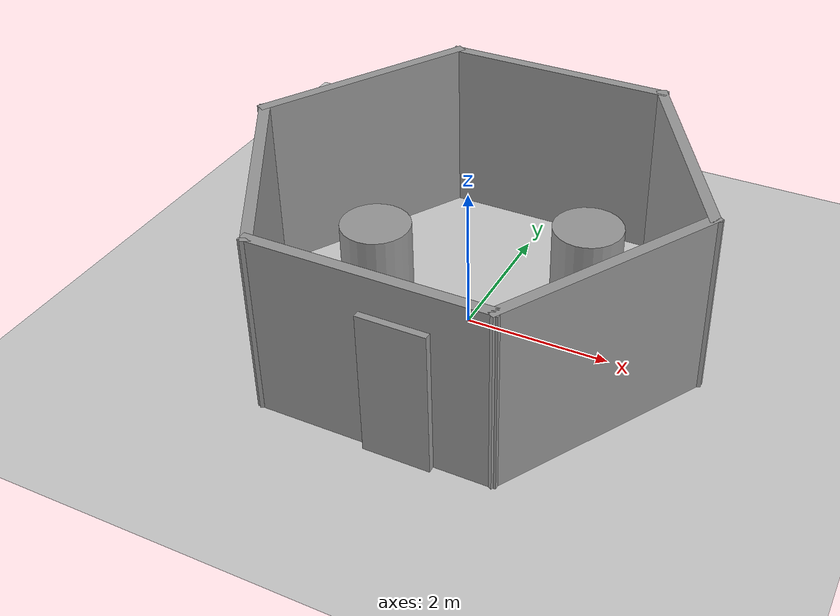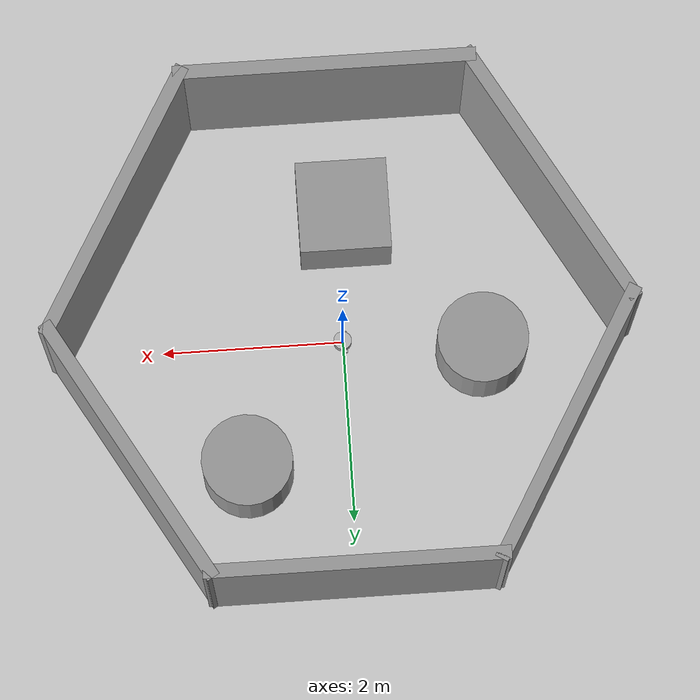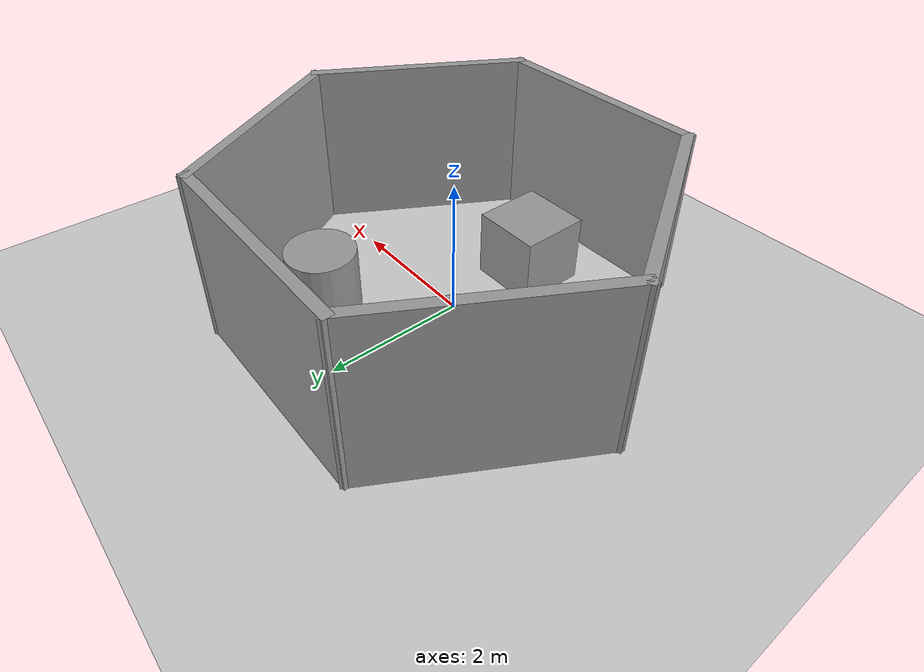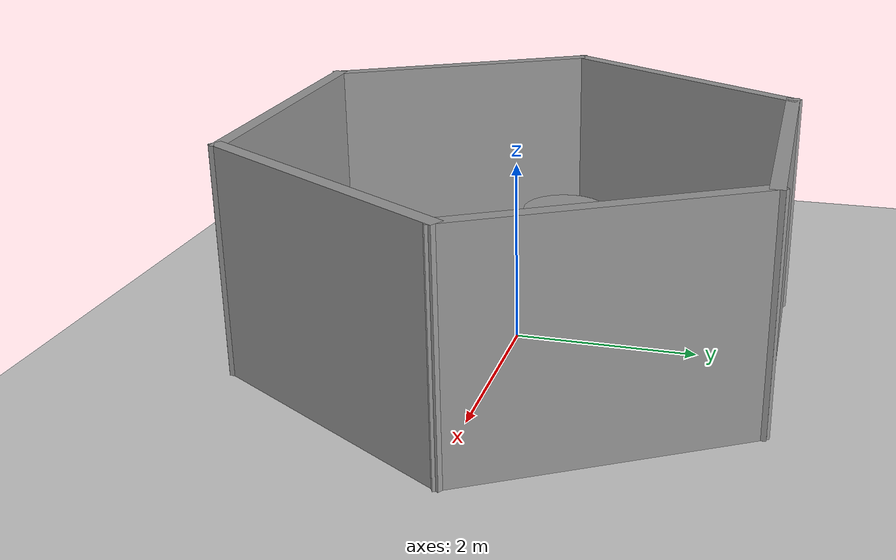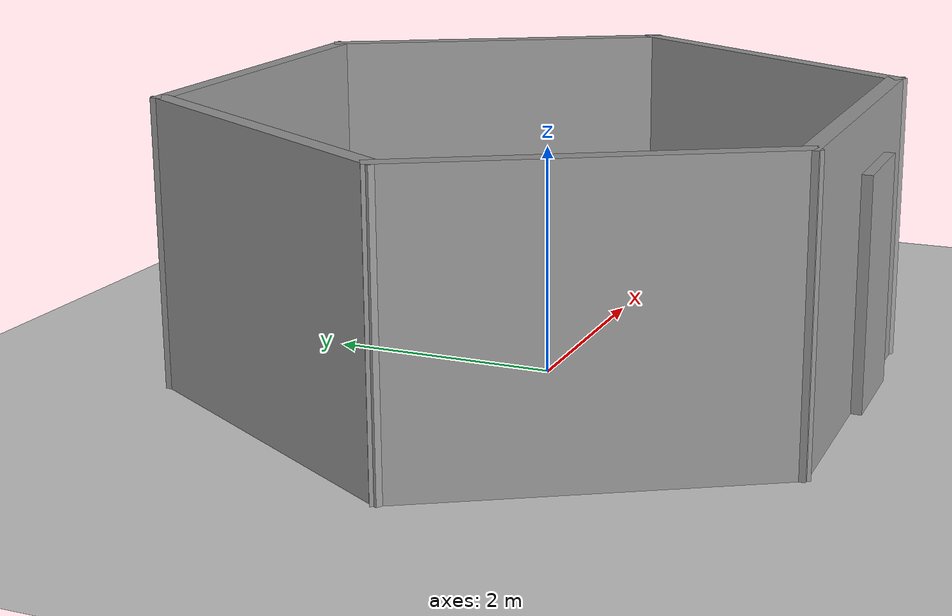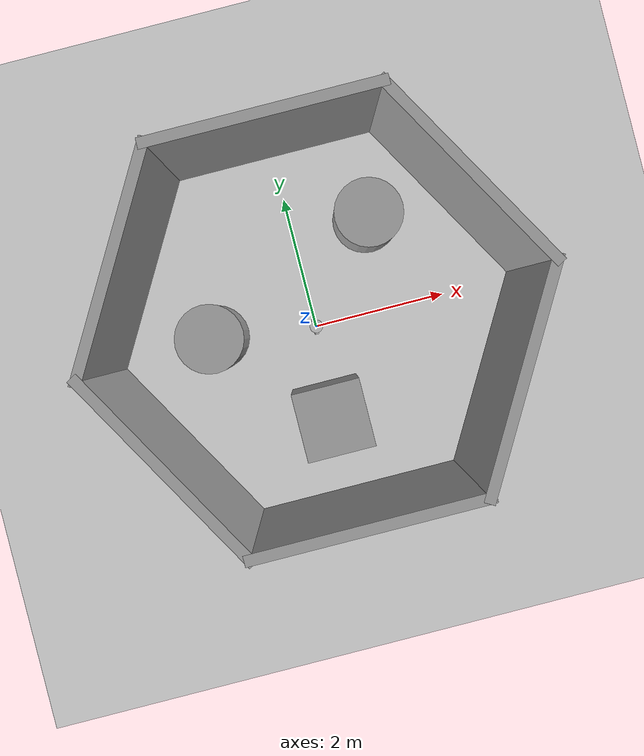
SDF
<sdf version="1.7">
 <world name="default">
  <light name="sun" type="directional">
   <pose>0 0 10 0 -0 0</pose>
   <diffuse>0.8 0.8 0.8 1</diffuse>
   <specular>0.2 0.2 0.2 1</specular>
   <attenuation>
    <range>1000</range>
    <constant>0.9</constant>
    <linear>0.01</linear>
    <quadratic>0.001</quadratic>
   </attenuation>
   <direction>-0.5 0.1 -0.9</direction>
   <spot><inner_angle>0</inner_angle><outer_angle>0</outer_angle><falloff>0</falloff></spot>
  </light>
  <model name="ground_plane">
   <static>1</static>
   <link name="link">
    <collision name="collision">
     <geometry><plane><normal>0 0 1</normal><size>100 100</size></plane></geometry>
     <surface><friction><ode><mu>100</mu><mu2>50</mu2></ode></friction></surface>
    </collision>
    <visual name="visual">
     <cast_shadows>0</cast_shadows>
     <geometry><plane><normal>0 0 1</normal><size>100 100</size></plane></geometry>
     <material>
      <script><uri>file://media/materials/scripts/gazebo.material</uri><name>Gazebo/Grey</name></script>
     </material>
    </visual>
   </link>
  </model>
  <gravity>0 0 -9.8</gravity>
  <magnetic_field>6e-06 2.3e-05 -4.2e-05</magnetic_field>
  <atmosphere type="adiabatic"/>
  <physics type="ode">
   <max_step_size>0.001</max_step_size>
   <real_time_factor>1</real_time_factor>
   <real_time_update_rate>1000</real_time_update_rate>
  </physics>
  <scene><ambient>0.4 0.4 0.4 1</ambient><background>0.7 0.7 0.7 1</background><shadows>1</shadows></scene>
  <audio><device>default</device></audio>
  <spherical_coordinates>
   <surface_model>EARTH_WGS84</surface_model>
   <latitude_deg>0</latitude_deg>
   <longitude_deg>0</longitude_deg>
   <elevation>0</elevation>
   <heading_deg>0</heading_deg>
  </spherical_coordinates>
  <model name="mbot.world">
   <pose>0.02999 0.08697 0 0 -0 0</pose>
   <link name="Wall_21">
    <collision name="Wall_21_Collision">
     <geometry><box><size>3.25 0.15 2.5</size></box></geometry>
     <pose>0 0 1.25 0 -0 0</pose>
    </collision>
    <visual name="Wall_21_Visual">
     <pose>0 0 1.25 0 -0 0</pose>
     <geometry><box><size>3.25 0.15 2.5</size></box></geometry>
     <material>
      <script><uri>file://media/materials/scripts/gazebo.material</uri><name>Gazebo/Grey</name></script>
      <ambient>1 1 1 1</ambient>
     </material>
     <meta><layer>0</layer></meta>
    </visual>
    <pose>0 2.68468 0 0 -0 0</pose>
   </link>
   <link name="Wall_22">
    <collision name="Wall_22_Collision">
     <geometry><box><size>3.25 0.15 2.5</size></box></geometry>
     <pose>0 0 1.25 0 -0 0</pose>
    </collision>
    <visual name="Wall_22_Visual">
     <pose>0 0 1.25 0 -0 0</pose>
     <geometry><box><size>3.25 0.15 2.5</size></box></geometry>
     <material>
      <script><uri>file://media/materials/scripts/gazebo.material</uri><name>Gazebo/Grey</name></script>
      <ambient>1 1 1 1</ambient>
     </material>
     <meta><layer>0</layer></meta>
    </visual>
    <pose>2.325 1.34234 0 0 -0 -1.0472</pose>
   </link>
   <link name="Wall_23">
    <collision name="Wall_23_Collision">
     <geometry><box><size>3.25 0.15 2.5</size></box></geometry>
     <pose>0 0 1.25 0 -0 0</pose>
    </collision>
    <visual name="Wall_23_Visual">
     <pose>0 0 1.25 0 -0 0</pose>
     <geometry><box><size>3.25 0.15 2.5</size></box></geometry>
     <material>
      <script><uri>file://media/materials/scripts/gazebo.material</uri><name>Gazebo/Grey</name></script>
      <ambient>1 1 1 1</ambient>
     </material>
     <meta><layer>0</layer></meta>
    </visual>
    <pose>2.325 -1.34234 0 0 -0 -2.0944</pose>
   </link>
   <link name="Wall_24">
    <collision name="Wall_24_Collision">
     <geometry><box><size>3.25 0.15 2.5</size></box></geometry>
     <pose>0 0 1.25 0 -0 0</pose>
    </collision>
    <visual name="Wall_24_Visual">
     <pose>0 0 1.25 0 -0 0</pose>
     <geometry><box><size>3.25 0.15 2.5</size></box></geometry>
     <material>
      <script><uri>file://media/materials/scripts/gazebo.material</uri><name>Gazebo/Grey</name></script>
      <ambient>1 1 1 1</ambient>
     </material>
     <meta><layer>0</layer></meta>
    </visual>
    <pose>0 -2.68468 0 0 -0 3.14159</pose>
   </link>
   <link name="Wall_25">
    <collision name="Wall_25_Collision">
     <geometry><box><size>3.25 0.15 2.5</size></box></geometry>
     <pose>0 0 1.25 0 -0 0</pose>
    </collision>
    <visual name="Wall_25_Visual">
     <pose>0 0 1.25 0 -0 0</pose>
     <geometry><box><size>3.25 0.15 2.5</size></box></geometry>
     <material>
      <script><uri>file://media/materials/scripts/gazebo.material</uri><name>Gazebo/Grey</name></script>
      <ambient>1 1 1 1</ambient>
     </material>
     <meta><layer>0</layer></meta>
    </visual>
    <pose>-2.325 -1.34234 0 0 -0 2.0944</pose>
   </link>
   <link name="Wall_26">
    <collision name="Wall_26_Collision">
     <geometry><box><size>3.25 0.15 2.5</size></box></geometry>
     <pose>0 0 1.25 0 -0 0</pose>
    </collision>
    <visual name="Wall_26_Visual">
     <pose>0 0 1.25 0 -0 0</pose>
     <geometry><box><size>3.25 0.15 2.5</size></box></geometry>
     <material>
      <script><uri>file://media/materials/scripts/gazebo.material</uri><name>Gazebo/Grey</name></script>
      <ambient>1 1 1 1</ambient>
     </material>
     <meta><layer>0</layer></meta>
    </visual>
    <pose>-2.325 1.34234 0 0 -0 1.0472</pose>
   </link>
   <static>1</static>
  </model>
  <model name="unit_box">
   <pose>-0.093181 -1.35413 0.5 0 -0 0</pose>
   <link name="link">
    <inertial>
     <mass>1</mass>
     <inertia>
      <ixx>0.166667</ixx>
      <ixy>0</ixy>
      <ixz>0</ixz>
      <iyy>0.166667</iyy>
      <iyz>0</iyz>
      <izz>0.166667</izz>
     </inertia>
    </inertial>
    <collision name="collision"><geometry><box><size>1 1 1</size></box></geometry></collision>
    <visual name="visual">
     <geometry><box><size>1 1 1</size></box></geometry>
     <material>
      <script><name>Gazebo/Grey</name><uri>file://media/materials/scripts/gazebo.material</uri></script>
     </material>
    </visual>
   </link>
  </model>
  <model name="unit_cylinder">
   <pose>1.1315 1.39437 0.499992 -3e-06 3e-06 0</pose>
   <link name="link">
    <inertial>
     <mass>1</mass>
     <inertia><ixx>0.145833</ixx><ixy>0</ixy><ixz>0</ixz><iyy>0.145833</iyy><iyz>0</iyz><izz>0.125</izz></inertia>
    </inertial>
    <collision name="collision">
     <geometry><cylinder><radius>0.5</radius><length>1</length></cylinder></geometry>
    </collision>
    <visual name="visual">
     <geometry><cylinder><radius>0.5</radius><length>1</length></cylinder></geometry>
     <material>
      <script><name>Gazebo/Grey</name><uri>file://media/materials/scripts/gazebo.material</uri></script>
     </material>
    </visual>
   </link>
  </model>
  <model name="unit_cylinder_0">
   <pose>-1.52002 0.208482 0.499992 -3e-06 3e-06 0</pose>
   <link name="link">
    <inertial>
     <mass>1</mass>
     <inertia><ixx>0.145833</ixx><ixy>0</ixy><ixz>0</ixz><iyy>0.145833</iyy><iyz>0</iyz><izz>0.125</izz></inertia>
    </inertial>
    <collision name="collision">
     <geometry><cylinder><radius>0.5</radius><length>1</length></cylinder></geometry>
    </collision>
    <visual name="visual">
     <geometry><cylinder><radius>0.5</radius><length>1</length></cylinder></geometry>
     <material>
      <script><name>Gazebo/Grey</name><uri>file://media/materials/scripts/gazebo.material</uri></script>
     </material>
    </visual>
   </link>
  </model>
  <model name="mbot.world_0">
   <link name="Door_0">
    <collision name="Door_0_Collision">
     <geometry><box><size>0.9 0.17 2</size></box></geometry>
     <pose>0 0 1 0 -0 0</pose>
    </collision>
    <visual name="Door_0_Visual">
     <pose>0 0 1 0 -0 0</pose>
     <geometry><box><size>0.9 0.17 2</size></box></geometry>
     <material>
      <script><uri>file://media/materials/scripts/gazebo.material</uri><name>Gazebo/Grey</name></script>
     </material>
    </visual>
    <pose>0.4 -2.68 0 0 -0 0</pose>
   </link>
   <static>1</static>
  </model>
  <model name="mbot">
   <link name="base_footprint">
    <inertial>
     <pose>0.002857 0 0.095 0 -0 0</pose>
     <mass>0.42</mass>
     <inertia>
      <ixx>0.0134043</ixx>
      <ixy>0</ixy>
      <ixz>0.000114</ixz>
      <iyy>0.0134728</iyy>
      <iyz>0</iyz>
      <izz>0.0211486</izz>
     </inertia>
    </inertial>
    <collision name="base_footprint_fixed_joint_lump__base_link_collision">
     <pose>0 0 0.076 0 -0 0</pose>
     <geometry><cylinder><length>0.12</length><radius>0.1</radius></cylinder></geometry>
    </collision>
    <collision name="base_footprint_fixed_joint_lump__caster_link_collision_1">
     <pose>0.06 0 0 1.57079 -0 0</pose>
     <geometry><sphere><radius>0.016</radius></sphere></geometry>
     <surface>
      <contact><ode><kp>1e+06</kp><kd>10</kd></ode></contact>
      <friction><ode><mu>0</mu><mu2>0</mu2></ode></friction>
     </surface>
    </collision>
    <collision name="base_footprint_fixed_joint_lump__imu_link_collision_2">
     <pose>0 0 0.096 0 -0 0</pose>
     <geometry><box><size>0.02 0.02 0.02</size></box></geometry>
    </collision>
    <collision name="base_footprint_fixed_joint_lump__laser_link_collision_3">
     <pose>0 0 0.151 0 -0 0</pose>
     <geometry><cylinder><length>0.02</length><radius>0.02</radius></cylinder></geometry>
    </collision>
    <visual name="base_footprint_fixed_joint_lump__base_link_visual">
     <pose>0 0 0.076 0 -0 0</pose>
     <geometry><cylinder><length>0.12</length><radius>0.1</radius></cylinder></geometry>
    </visual>
    <visual name="base_footprint_fixed_joint_lump__caster_link_visual_1">
     <pose>0.06 0 0 1.57079 -0 0</pose>
     <geometry><sphere><radius>0.016</radius></sphere></geometry>
     <material>
      <script><name>Gazebo/Black</name><uri>file://media/materials/scripts/gazebo.material</uri></script>
     </material>
    </visual>
    <visual name="base_footprint_fixed_joint_lump__imu_link_visual_2">
     <pose>0 0 0.096 0 -0 0</pose>
     <geometry><box><size>0.02 0.02 0.02</size></box></geometry>
    </visual>
    <visual name="base_footprint_fixed_joint_lump__laser_link_visual_3">
     <pose>0 0 0.151 0 -0 0</pose>
     <geometry><cylinder><length>0.02</length><radius>0.02</radius></cylinder></geometry>
     <material>
      <script><name>Gazebo/Black</name><uri>file://media/materials/scripts/gazebo.material</uri></script>
     </material>
    </visual>
    <sensor name="imu_sensor" type="imu">
     <plugin name="imu_plugin" filename="libgazebo_ros_imu_sensor.so">
      <ros><namespace>/</namespace><remapping>~/out:=imu</remapping></ros>
      <initial_orientation_as_reference>0</initial_orientation_as_reference>
     </plugin>
     <always_on>1</always_on>
     <update_rate>100</update_rate>
     <visualize>1</visualize>
     <imu>
      <angular_velocity>
       <x>
        <noise type="gaussian">
         <mean>0</mean>
         <stddev>0.0002</stddev>
         <bias_mean>7.5e-06</bias_mean>
         <bias_stddev>8e-07</bias_stddev>
        </noise>
       </x>
       <y>
        <noise type="gaussian">
         <mean>0</mean>
         <stddev>0.0002</stddev>
         <bias_mean>7.5e-06</bias_mean>
         <bias_stddev>8e-07</bias_stddev>
        </noise>
       </y>
       <z>
        <noise type="gaussian">
         <mean>0</mean>
         <stddev>0.0002</stddev>
         <bias_mean>7.5e-06</bias_mean>
         <bias_stddev>8e-07</bias_stddev>
        </noise>
       </z>
      </angular_velocity>
      <linear_acceleration>
       <x>
        <noise type="gaussian">
         <mean>0</mean>
         <stddev>0.017</stddev>
         <bias_mean>0.1</bias_mean>
         <bias_stddev>0.001</bias_stddev>
        </noise>
       </x>
       <y>
        <noise type="gaussian">
         <mean>0</mean>
         <stddev>0.017</stddev>
         <bias_mean>0.1</bias_mean>
         <bias_stddev>0.001</bias_stddev>
        </noise>
       </y>
       <z>
        <noise type="gaussian">
         <mean>0</mean>
         <stddev>0.017</stddev>
         <bias_mean>0.1</bias_mean>
         <bias_stddev>0.001</bias_stddev>
        </noise>
       </z>
      </linear_acceleration>
     </imu>
     <pose>0 0 0.096 0 -0 0</pose>
    </sensor>
    <sensor name="laser_sensor" type="ray">
     <always_on>1</always_on>
     <visualize>1</visualize>
     <update_rate>5</update_rate>
     <ray>
      <scan>
       <horizontal>
        <samples>360</samples>
        <resolution>1</resolution>
        <min_angle>0</min_angle>
        <max_angle>6.28</max_angle>
       </horizontal>
       <vertical><samples>1</samples><min_angle>0</min_angle><max_angle>0</max_angle></vertical>
      </scan>
      <range><min>0.12</min><max>3.5</max><resolution>0.015</resolution></range>
      <noise><type>gaussian</type><mean>0</mean><stddev>0.01</stddev></noise>
     </ray>
     <plugin name="laserscan" filename="libgazebo_ros_ray_sensor.so">
      <ros><remapping>~/out:=scan</remapping></ros>
      <output_type>sensor_msgs/LaserScan</output_type>
      <frame_name>laser_link</frame_name>
     </plugin>
     <pose>0 0 0.151 0 -0 0</pose>
    </sensor>
    <sensor name="ultrasonic_sensor" type="ray">
     <visualize>1</visualize>
     <update_rate>5</update_rate>
     <ray>
      <scan>
       <horizontal>
        <samples>5</samples>
        <resolution>1</resolution>
        <min_angle>-0.12</min_angle>
        <max_angle>0.12</max_angle>
       </horizontal>
       <vertical>
        <samples>5</samples>
        <resolution>1</resolution>
        <min_angle>-0.01</min_angle>
        <max_angle>0.01</max_angle>
       </vertical>
      </scan>
      <range><min>0.02</min><max>4</max><resolution>0.01</resolution></range>
      <noise><type>gaussian</type><mean>0</mean><stddev>0.01</stddev></noise>
     </ray>
     <plugin name="ultrasonic_sensor_controller" filename="libgazebo_ros_ray_sensor.so">
      <ros><remapping>~/out:=ultrasonic_sensor_1</remapping></ros>
      <output_type>sensor_msgs/Range</output_type>
      <radiation_type>ultrasound</radiation_type>
      <frame_name>ultrasonic_sensor_link</frame_name>
     </plugin>
     <pose>0.07 0 0.152 0 -0 0</pose>
    </sensor>
   </link>
   <joint name="left_wheel_joint" type="revolute">
    <pose relative_to="base_footprint">-0.02 0.1 0.016 0 -0 0</pose>
    <parent>base_footprint</parent>
    <child>left_wheel_link</child>
    <axis>
     <xyz>0 1 0</xyz>
     <limit><lower>-1e+16</lower><upper>1e+16</upper></limit>
     <dynamics><spring_reference>0</spring_reference><spring_stiffness>0</spring_stiffness></dynamics>
    </axis>
   </joint>
   <link name="left_wheel_link">
    <pose relative_to="left_wheel_joint">0 0 0 0 -0 0</pose>
    <inertial>
     <mass>0.2</mass>
     <inertia>
      <ixx>0.000190417</ixx>
      <ixy>0</ixy>
      <ixz>0</ixz>
      <iyy>0.0001904</iyy>
      <iyz>0</iyz>
      <izz>0.00036</izz>
     </inertia>
    </inertial>
    <collision name="left_wheel_link_collision">
     <pose>0 0 0 1.57079 -0 0</pose>
     <geometry><cylinder><length>0.04</length><radius>0.032</radius></cylinder></geometry>
    </collision>
    <visual name="left_wheel_link_visual">
     <pose>0 0 0 1.57079 -0 0</pose>
     <geometry><cylinder><length>0.04</length><radius>0.032</radius></cylinder></geometry>
    </visual>
   </link>
   <joint name="right_wheel_joint" type="revolute">
    <pose relative_to="base_footprint">-0.02 -0.1 0.016 0 -0 0</pose>
    <parent>base_footprint</parent>
    <child>right_wheel_link</child>
    <axis>
     <xyz>0 1 0</xyz>
     <limit><lower>-1e+16</lower><upper>1e+16</upper></limit>
     <dynamics><spring_reference>0</spring_reference><spring_stiffness>0</spring_stiffness></dynamics>
    </axis>
   </joint>
   <link name="right_wheel_link">
    <pose relative_to="right_wheel_joint">0 0 0 0 -0 0</pose>
    <inertial>
     <mass>0.2</mass>
     <inertia>
      <ixx>0.000190417</ixx>
      <ixy>0</ixy>
      <ixz>0</ixz>
      <iyy>0.0001904</iyy>
      <iyz>0</iyz>
      <izz>0.00036</izz>
     </inertia>
    </inertial>
    <collision name="right_wheel_link_collision">
     <pose>0 0 0 1.57079 -0 0</pose>
     <geometry><cylinder><length>0.04</length><radius>0.032</radius></cylinder></geometry>
    </collision>
    <visual name="right_wheel_link_visual">
     <pose>0 0 0 1.57079 -0 0</pose>
     <geometry><cylinder><length>0.04</length><radius>0.032</radius></cylinder></geometry>
    </visual>
   </link>
   <static>0</static>
   <plugin name="diff_drive" filename="libgazebo_ros_diff_drive.so">
    <ros><namespace>/</namespace><remapping>cmd_vel:=cmd_vel</remapping><remapping>odom:=odom</remapping></ros>
    <update_rate>30</update_rate>
    <left_joint>left_wheel_joint</left_joint>
    <right_joint>right_wheel_joint</right_joint>
    <wheel_separation>0.2</wheel_separation>
    <wheel_diameter>0.065</wheel_diameter>
    <max_wheel_torque>20</max_wheel_torque>
    <max_wheel_acceleration>1.0</max_wheel_acceleration>
    <publish_odom>1</publish_odom>
    <publish_odom_tf>1</publish_odom_tf>
    <publish_wheel_tf>1</publish_wheel_tf>
    <odometry_frame>odom</odometry_frame>
    <robot_base_frame>base_footprint</robot_base_frame>
   </plugin>
   <plugin name="fishbot_joint_state" filename="libgazebo_ros_joint_state_publisher.so">
    <ros><remapping>~/out:=joint_states</remapping></ros>
    <update_rate>30</update_rate>
    <joint_name>right_wheel_joint</joint_name>
    <joint_name>left_wheel_joint</joint_name>
   </plugin>
   <pose>0.001223 -1.5e-05 0.016 1e-06 1.4e-05 -0.00058</pose>
  </model>
 </world>
</sdf>
